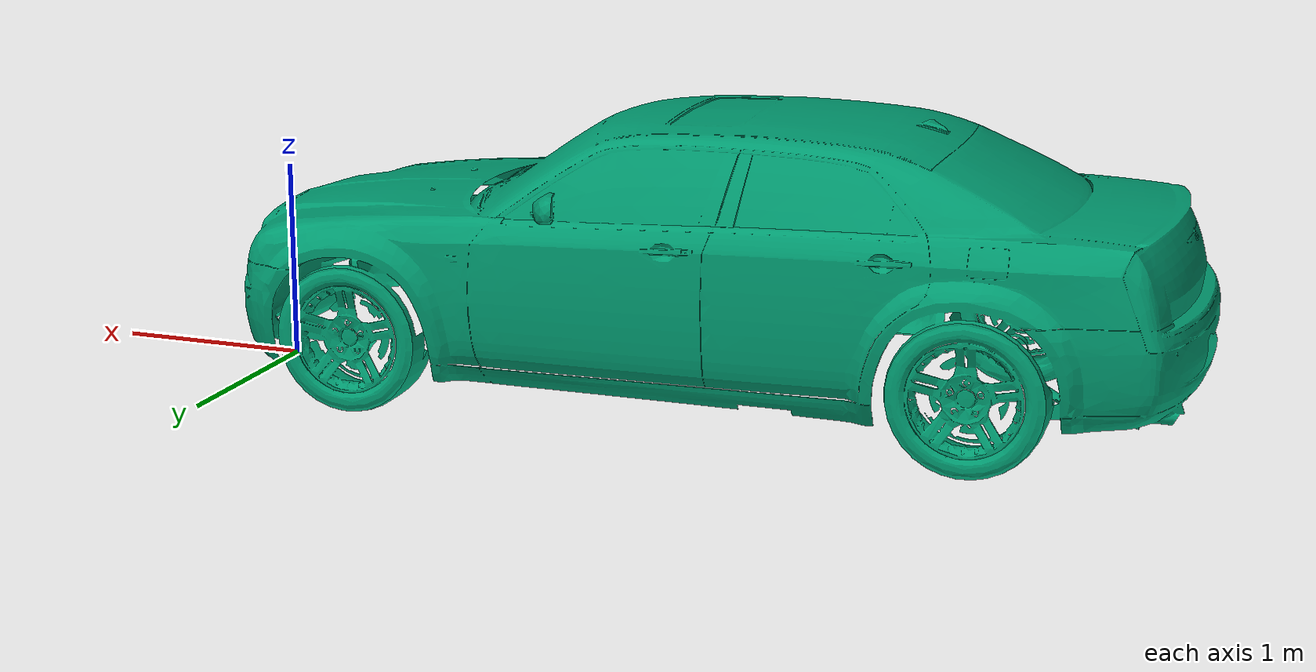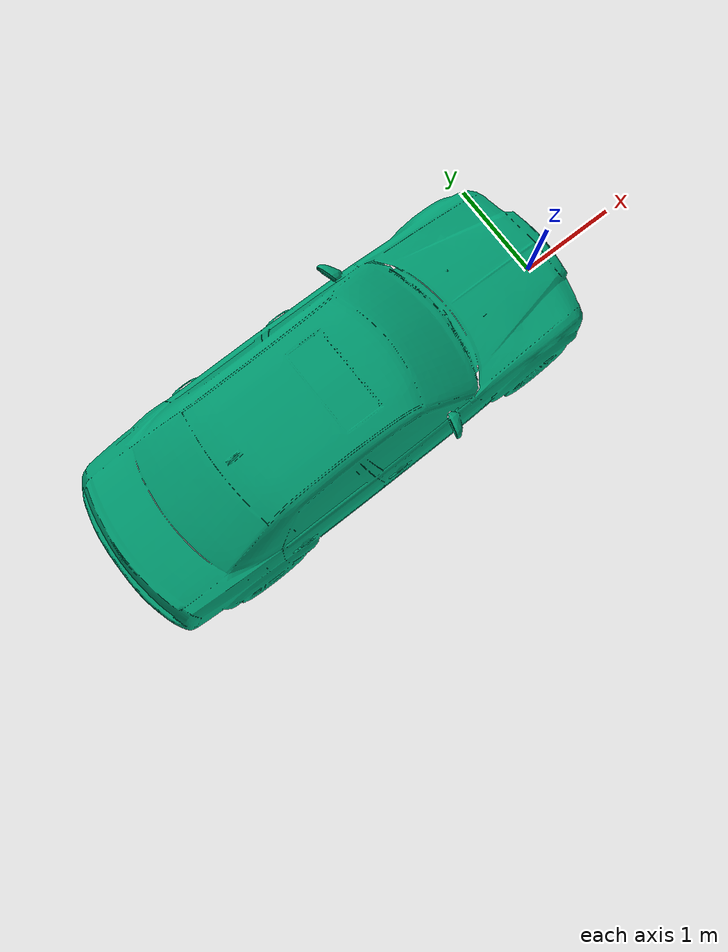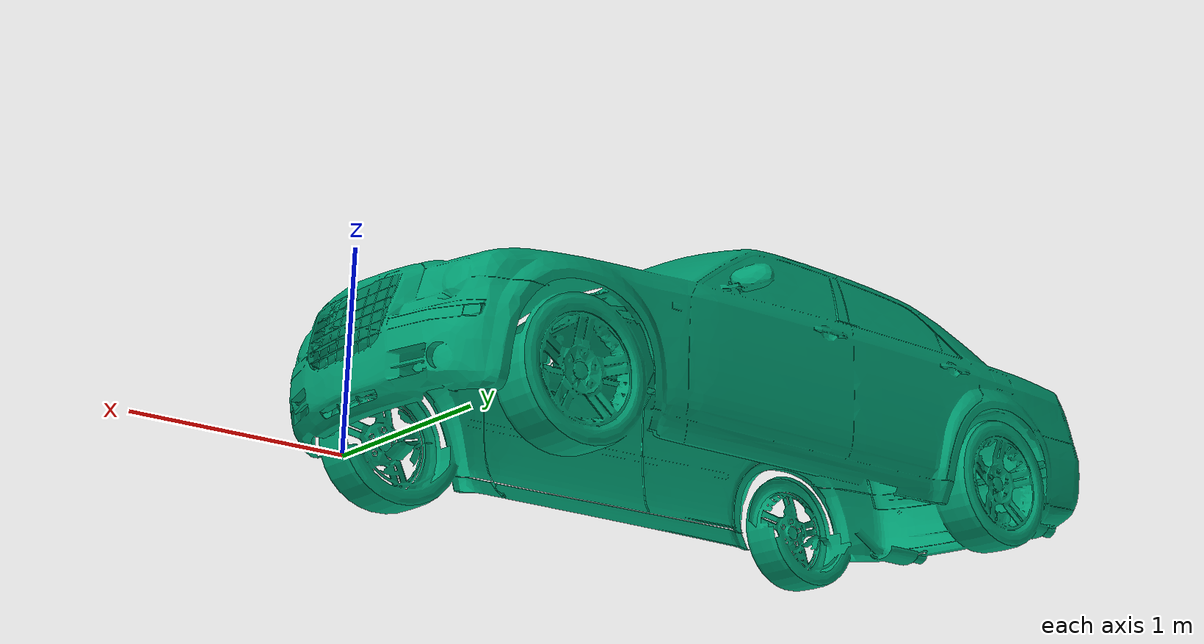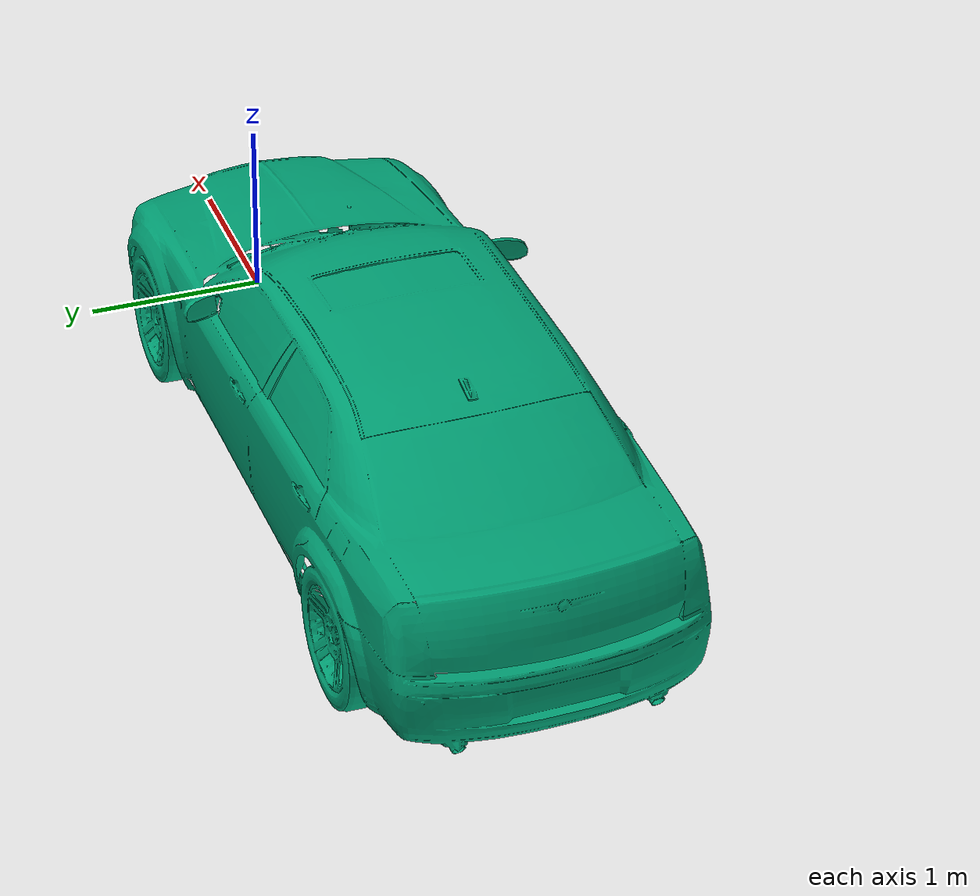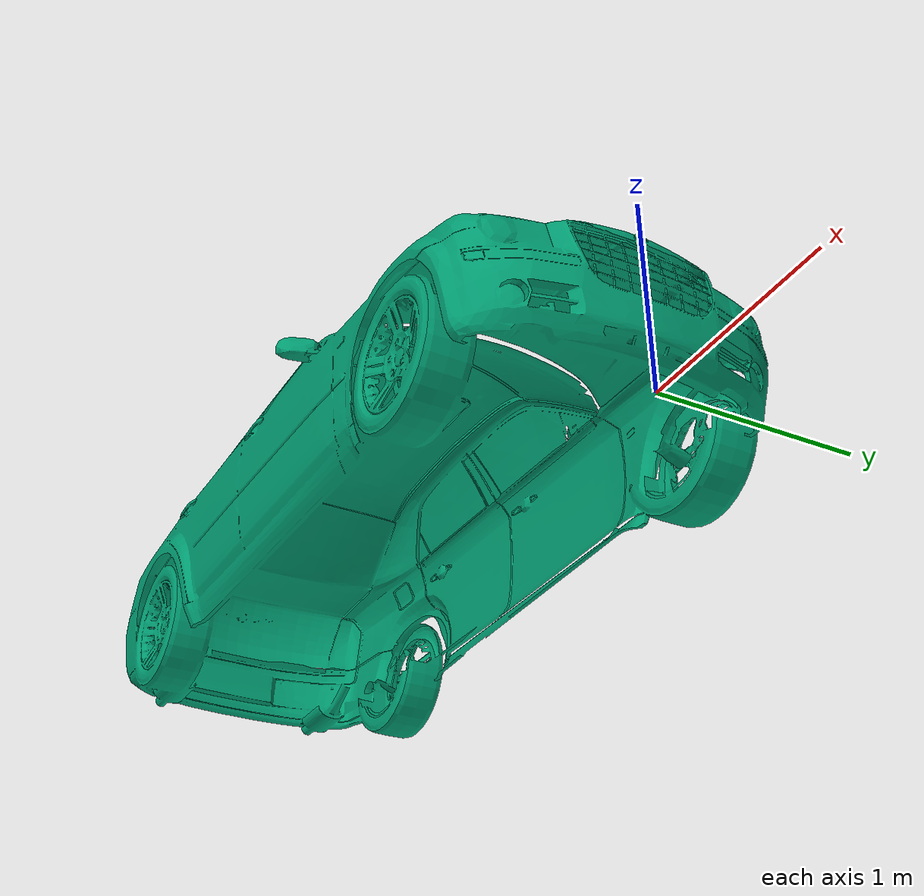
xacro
<?xml version="1.0" ?>

<robot name="lidar_test" xmlns:xacro="http://ros.org/wiki/xacro">
  <link name="odom"/>
  <link name="lidar_parent"/>
  <link name="view_object">
    <visual>
      <geometry>
        <mesh filename="package://simulated_lidar_scanner/test/view_object.stl"/>
      </geometry>
      <material name="view_object_material">
        <color rbga="1 0 0 1"/>
      </material>
    </visual>
  </link>

  <joint name="lidar_parent_joint" type="fixed">
    <origin xyz="1 0 2" rpy="0 -${radians(135)} 0"/>
    <parent link="odom"/>
    <child link="lidar_parent"/>
  </joint>

  <joint name="view_object_joint" type="fixed">
    <origin xyz="0 0 0" rpy="0 0 0"/>
    <parent link="odom"/>
    <child link="view_object"/>
  </joint>
</robot>
